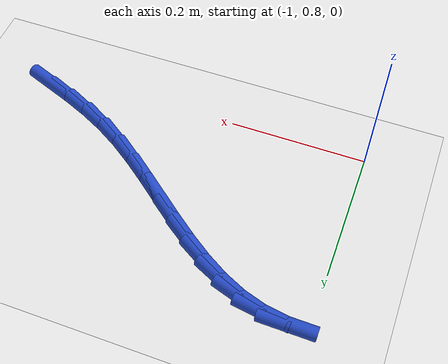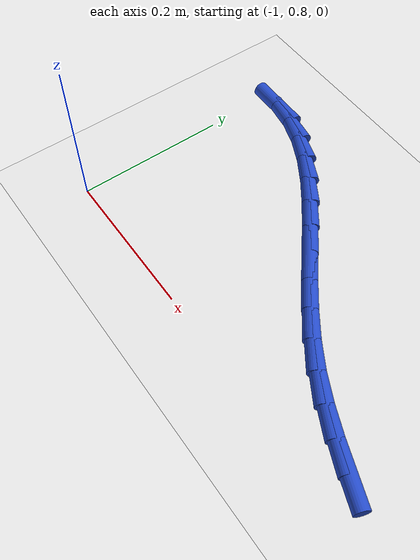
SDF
<sdf version="1.6">
 <world name="default">
  <model name="ground_plane">
   <static>1</static>
   <link name="link">
    <collision name="collision">
     <geometry><plane><normal>0 0 1</normal><size>100 100</size></plane></geometry>
     <surface><friction><ode><mu>100</mu><mu2>50</mu2></ode></friction></surface>
    </collision>
    <visual name="visual">
     <cast_shadows>0</cast_shadows>
     <geometry><plane><normal>0 0 1</normal><size>100 100</size></plane></geometry>
     <material>
      <script><uri>file://media/materials/scripts/gazebo.material</uri><name>Gazebo/WhiteGlow</name></script>
     </material>
    </visual>
   </link>
  </model>
  <model name="line">
   <link name="link_28">
    <pose>-0.518297681186749 0.8295932810315947 0.01 0 1.57 -0.3686858567018237</pose>
    <collision name="collision">
     <geometry><cylinder><radius>0.01</radius><length>0.08</length></cylinder></geometry>
    </collision>
    <visual name="visual">
     <material>
      <script><name>Gazebo/Blue</name><uri>file://media/materials/scripts/gazebo.material</uri></script>
     </material>
     <geometry><cylinder><radius>0.01</radius><length>0.08</length></cylinder></geometry>
    </visual>
   </link>
   <link name="link_29">
    <pose>-0.5541640656622675 0.8434503336639881 0.01 0 1.57 -0.41087881208877697</pose>
    <collision name="collision">
     <geometry><cylinder><radius>0.01</radius><length>0.08</length></cylinder></geometry>
    </collision>
    <visual name="visual">
     <material>
      <script><name>Gazebo/Blue</name><uri>file://media/materials/scripts/gazebo.material</uri></script>
     </material>
     <geometry><cylinder><radius>0.01</radius><length>0.08</length></cylinder></geometry>
    </visual>
   </link>
   <link name="link_30">
    <pose>-0.5895230637434492 0.8588554156300501 0.01 0 1.57 -0.47068437874454233</pose>
    <collision name="collision">
     <geometry><cylinder><radius>0.01</radius><length>0.08</length></cylinder></geometry>
    </collision>
    <visual name="visual">
     <material>
      <script><name>Gazebo/Blue</name><uri>file://media/materials/scripts/gazebo.material</uri></script>
     </material>
     <geometry><cylinder><radius>0.01</radius><length>0.08</length></cylinder></geometry>
    </visual>
   </link>
   <link name="link_31">
    <pose>-0.6240297769757756 0.8764133687058208 0.01 0 1.57 -0.5465471982181477</pose>
    <collision name="collision">
     <geometry><cylinder><radius>0.01</radius><length>0.08</length></cylinder></geometry>
    </collision>
    <visual name="visual">
     <material>
      <script><name>Gazebo/Blue</name><uri>file://media/materials/scripts/gazebo.material</uri></script>
     </material>
     <geometry><cylinder><radius>0.01</radius><length>0.08</length></cylinder></geometry>
    </visual>
   </link>
   <link name="link_32">
    <pose>-0.6573564013776125 0.8966881047991677 0.01 0 1.57 -0.6168525762348066</pose>
    <collision name="collision">
     <geometry><cylinder><radius>0.01</radius><length>0.08</length></cylinder></geometry>
    </collision>
    <visual name="visual">
     <material>
      <script><name>Gazebo/Blue</name><uri>file://media/materials/scripts/gazebo.material</uri></script>
     </material>
     <geometry><cylinder><radius>0.01</radius><length>0.08</length></cylinder></geometry>
    </visual>
   </link>
   <link name="link_33">
    <pose>-0.6894943214918186 0.919479292058185 0.01 0 1.57 -0.6639362488759559</pose>
    <collision name="collision">
     <geometry><cylinder><radius>0.01</radius><length>0.08</length></cylinder></geometry>
    </collision>
    <visual name="visual">
     <material>
      <script><name>Gazebo/Blue</name><uri>file://media/materials/scripts/gazebo.material</uri></script>
     </material>
     <geometry><cylinder><radius>0.01</radius><length>0.08</length></cylinder></geometry>
    </visual>
   </link>
   <link name="link_34">
    <pose>-0.7207177274639663 0.9439094677176673 0.01 0 1.57 -0.6884206580190309</pose>
    <collision name="collision">
     <geometry><cylinder><radius>0.01</radius><length>0.08</length></cylinder></geometry>
    </collision>
    <visual name="visual">
     <material>
      <script><name>Gazebo/Blue</name><uri>file://media/materials/scripts/gazebo.material</uri></script>
     </material>
     <geometry><cylinder><radius>0.01</radius><length>0.08</length></cylinder></geometry>
    </visual>
   </link>
   <link name="link_35">
    <pose>-0.7513105939026653 0.9690777417453091 0.01 0 1.57 -0.6908277154732276</pose>
    <collision name="collision">
     <geometry><cylinder><radius>0.01</radius><length>0.08</length></cylinder></geometry>
    </collision>
    <visual name="visual">
     <material>
      <script><name>Gazebo/Blue</name><uri>file://media/materials/scripts/gazebo.material</uri></script>
     </material>
     <geometry><cylinder><radius>0.01</radius><length>0.08</length></cylinder></geometry>
    </visual>
   </link>
   <link name="link_36">
    <pose>-0.7815568954165251 0.9940832241088046 0.01 0 1.57 -0.6705824713510131</pose>
    <collision name="collision">
     <geometry><cylinder><radius>0.01</radius><length>0.08</length></cylinder></geometry>
    </collision>
    <visual name="visual">
     <material>
      <script><name>Gazebo/Blue</name><uri>file://media/materials/scripts/gazebo.material</uri></script>
     </material>
     <geometry><cylinder><radius>0.01</radius><length>0.08</length></cylinder></geometry>
    </visual>
   </link>
   <link name="link_37">
    <pose>-0.8117406066141545 1.018025024775848 0.01 0 1.57 -0.6258738531762549</pose>
    <collision name="collision">
     <geometry><cylinder><radius>0.01</radius><length>0.08</length></cylinder></geometry>
    </collision>
    <visual name="visual">
     <material>
      <script><name>Gazebo/Blue</name><uri>file://media/materials/scripts/gazebo.material</uri></script>
     </material>
     <geometry><cylinder><radius>0.01</radius><length>0.08</length></cylinder></geometry>
    </visual>
   </link>
   <link name="link_38">
    <pose>-0.8421457021041638 1.0400022537141342 0.01 0 1.57 -0.5537629203544503</pose>
    <collision name="collision">
     <geometry><cylinder><radius>0.01</radius><length>0.08</length></cylinder></geometry>
    </collision>
    <visual name="visual">
     <material>
      <script><name>Gazebo/Blue</name><uri>file://media/materials/scripts/gazebo.material</uri></script>
     </material>
     <geometry><cylinder><radius>0.01</radius><length>0.08</length></cylinder></geometry>
    </visual>
   </link>
   <link name="link_39">
    <pose>-0.8730561564951621 1.0591140208913574 0.01 0 1.57 -0.45083534108492157</pose>
    <collision name="collision">
     <geometry><cylinder><radius>0.01</radius><length>0.08</length></cylinder></geometry>
    </collision>
    <visual name="visual">
     <material>
      <script><name>Gazebo/Blue</name><uri>file://media/materials/scripts/gazebo.material</uri></script>
     </material>
     <geometry><cylinder><radius>0.01</radius><length>0.08</length></cylinder></geometry>
    </visual>
   </link>
   <link name="link_40">
    <pose>-0.904755944395759 1.074459436275212 0.01 0 1.57 -0.3149745797117194</pose>
    <collision name="collision">
     <geometry><cylinder><radius>0.01</radius><length>0.08</length></cylinder></geometry>
    </collision>
    <visual name="visual">
     <material>
      <script><name>Gazebo/Blue</name><uri>file://media/materials/scripts/gazebo.material</uri></script>
     </material>
     <geometry><cylinder><radius>0.01</radius><length>0.08</length></cylinder></geometry>
    </visual>
   </link>
   <link name="link_41">
    <pose>-0.9375290404145633 1.085137609833392 0.01 0 1.57 -0.15445070433973135</pose>
    <collision name="collision">
     <geometry><cylinder><radius>0.01</radius><length>0.08</length></cylinder></geometry>
    </collision>
    <visual name="visual">
     <material>
      <script><name>Gazebo/Blue</name><uri>file://media/materials/scripts/gazebo.material</uri></script>
     </material>
     <geometry><cylinder><radius>0.01</radius><length>0.08</length></cylinder></geometry>
    </visual>
   </link>
   <link name="link_42">
    <pose>-0.9716039636044332 1.0904427577645868 0.01 0 1.57 -0.010237912246959335</pose>
    <collision name="collision">
     <geometry><cylinder><radius>0.01</radius><length>0.08</length></cylinder></geometry>
    </collision>
    <visual name="visual">
     <material>
      <script><name>Gazebo/Blue</name><uri>file://media/materials/scripts/gazebo.material</uri></script>
     </material>
     <geometry><cylinder><radius>0.01</radius><length>0.08</length></cylinder></geometry>
    </visual>
   </link>
  </model>
 </world>
</sdf>
